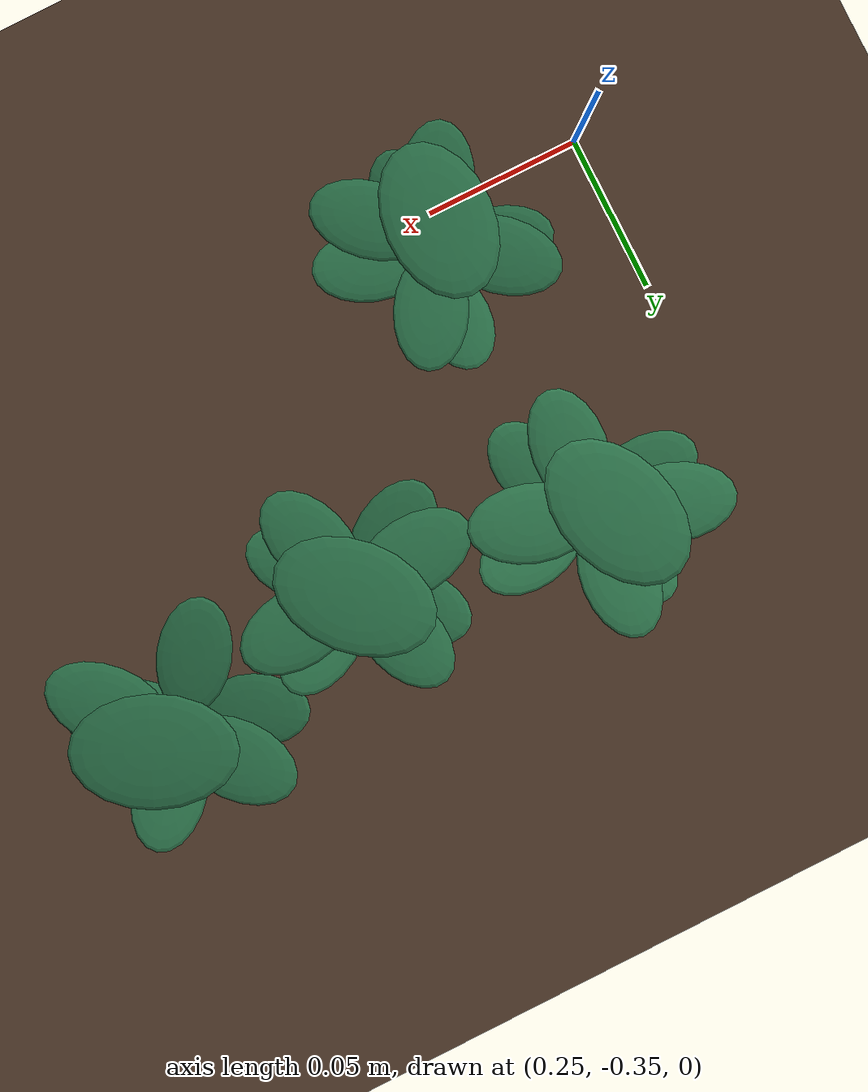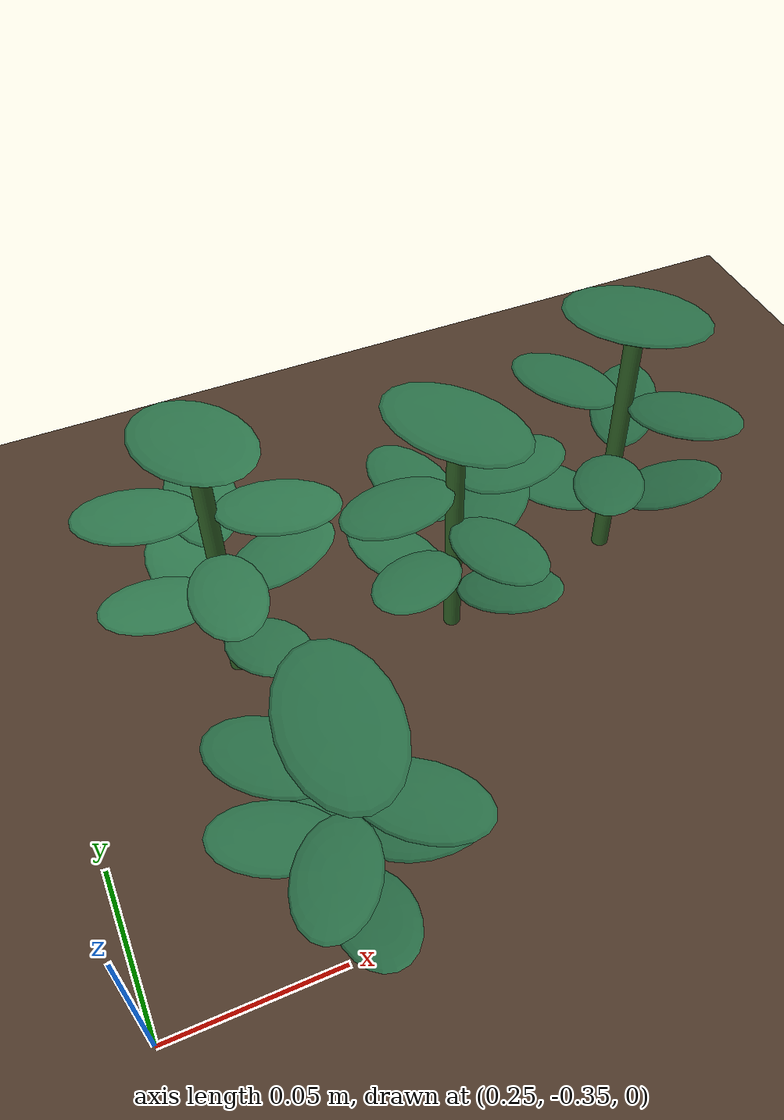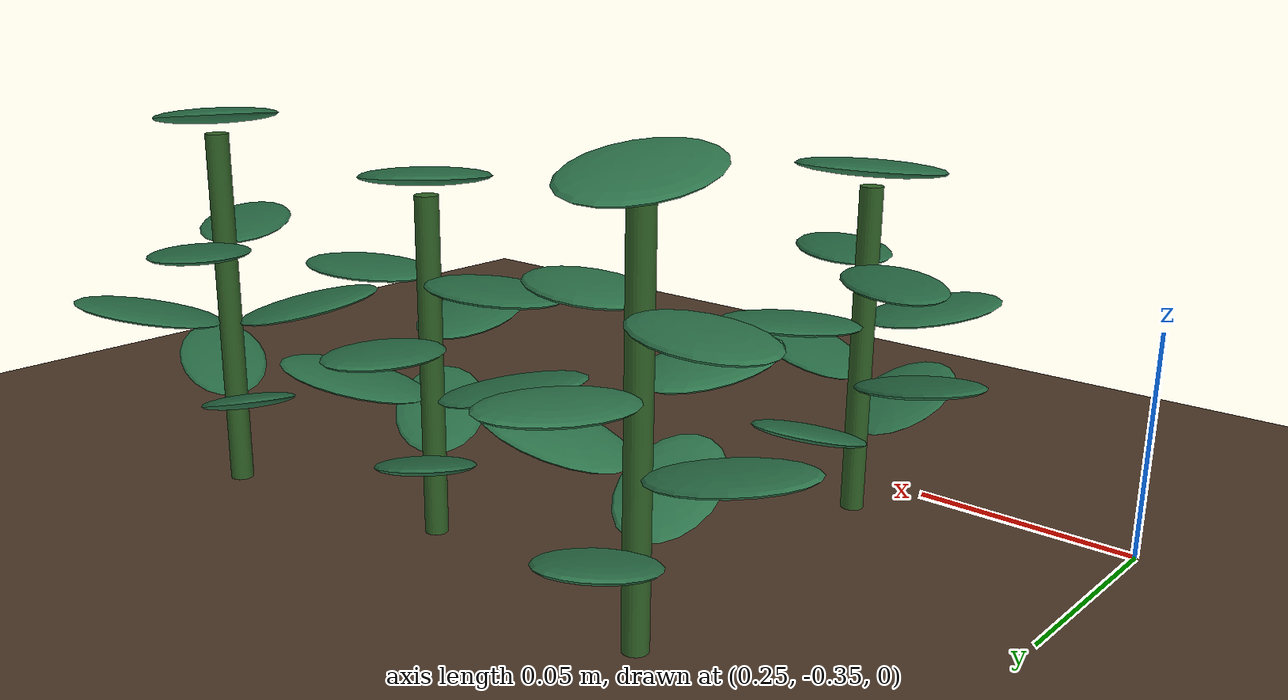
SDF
<sdf version="1.9">
 <world name="jim_field">
  <model name="ground_plane">
   <static>true</static>
   <link name="link">
    <collision name="collision">
     <geometry><plane><normal>0 0 1</normal><size>40 40</size></plane></geometry>
    </collision>
    <visual name="visual">
     <geometry><plane><normal>0 0 1</normal><size>40 40</size></plane></geometry>
     <material>
      <ambient>0.20 0.15 0.11 1</ambient>
      <diffuse>0.30 0.22 0.16 1</diffuse>
      <specular>0.01 0.01 0.01 1</specular>
     </material>
    </visual>
   </link>
  </model>
  <model name="field">
   <static>true</static>
   <pose>0.1837 -0.2516 0 0 0 0</pose>
   <model name="crop_78">
    <static>true</static>
    <pose>0.1254 -0.0813 0 0 0 0</pose>
    <link name="link">
     <visual name="stem">
      <pose>0 0 0.0378 0 0 0</pose>
      <geometry><cylinder><radius>0.0026</radius><length>0.0756</length></cylinder></geometry>
      <material>
       <ambient>0.10 0.22 0.09 1</ambient>
       <diffuse>0.20 0.40 0.16 1</diffuse>
       <specular>0.05 0.06 0.05 1</specular>
      </material>
     </visual>
     <visual name="leaflet_0_0">
      <pose>0.0012 0.0180 0.0227 0 -0.300 1.5025</pose>
      <geometry><ellipsoid><radii>0.0170 0.0105 0.0016</radii></ellipsoid></geometry>
      <material>
       <ambient>0.083 0.222 0.128 1</ambient>
       <diffuse>0.156 0.424 0.271 1</diffuse>
       <specular>0.05 0.06 0.05 1</specular>
      </material>
     </visual>
     <visual name="leaflet_0_1">
      <pose>-0.0012 -0.0180 0.0227 0 -0.300 4.6441</pose>
      <geometry><ellipsoid><radii>0.0170 0.0105 0.0016</radii></ellipsoid></geometry>
      <material>
       <ambient>0.083 0.222 0.128 1</ambient>
       <diffuse>0.156 0.424 0.271 1</diffuse>
       <specular>0.05 0.06 0.05 1</specular>
      </material>
     </visual>
     <visual name="leaflet_1_0">
      <pose>-0.0173 0.0051 0.0344 0 -0.200 2.8525</pose>
      <geometry><ellipsoid><radii>0.0170 0.0105 0.0016</radii></ellipsoid></geometry>
      <material>
       <ambient>0.083 0.222 0.128 1</ambient>
       <diffuse>0.156 0.424 0.271 1</diffuse>
       <specular>0.05 0.06 0.05 1</specular>
      </material>
     </visual>
     <visual name="leaflet_1_1">
      <pose>0.0173 -0.0051 0.0344 0 -0.200 5.9941</pose>
      <geometry><ellipsoid><radii>0.0170 0.0105 0.0016</radii></ellipsoid></geometry>
      <material>
       <ambient>0.083 0.222 0.128 1</ambient>
       <diffuse>0.156 0.424 0.271 1</diffuse>
       <specular>0.05 0.06 0.05 1</specular>
      </material>
     </visual>
     <visual name="leaflet_2_0">
      <pose>-0.0088 -0.0157 0.0461 0 -0.100 4.2025</pose>
      <geometry><ellipsoid><radii>0.0170 0.0105 0.0016</radii></ellipsoid></geometry>
      <material>
       <ambient>0.083 0.222 0.128 1</ambient>
       <diffuse>0.156 0.424 0.271 1</diffuse>
       <specular>0.05 0.06 0.05 1</specular>
      </material>
     </visual>
     <visual name="leaflet_2_1">
      <pose>0.0088 0.0157 0.0461 0 -0.100 7.3441</pose>
      <geometry><ellipsoid><radii>0.0170 0.0105 0.0016</radii></ellipsoid></geometry>
      <material>
       <ambient>0.083 0.222 0.128 1</ambient>
       <diffuse>0.156 0.424 0.271 1</diffuse>
       <specular>0.05 0.06 0.05 1</specular>
      </material>
     </visual>
     <visual name="leaflet_3_0">
      <pose>0.0134 -0.0120 0.0579 0 0.000 5.5525</pose>
      <geometry><ellipsoid><radii>0.0170 0.0105 0.0016</radii></ellipsoid></geometry>
      <material>
       <ambient>0.083 0.222 0.128 1</ambient>
       <diffuse>0.156 0.424 0.271 1</diffuse>
       <specular>0.05 0.06 0.05 1</specular>
      </material>
     </visual>
     <visual name="leaflet_3_1">
      <pose>-0.0134 0.0120 0.0579 0 0.000 8.6941</pose>
      <geometry><ellipsoid><radii>0.0170 0.0105 0.0016</radii></ellipsoid></geometry>
      <material>
       <ambient>0.083 0.222 0.128 1</ambient>
       <diffuse>0.156 0.424 0.271 1</diffuse>
       <specular>0.05 0.06 0.05 1</specular>
      </material>
     </visual>
     <visual name="leaflet_terminal">
      <pose>0 0 0.0796 0 -0.12 1.5025</pose>
      <geometry><ellipsoid><radii>0.0215 0.0140 0.0018</radii></ellipsoid></geometry>
      <material>
       <ambient>0.083 0.222 0.128 1</ambient>
       <diffuse>0.156 0.424 0.271 1</diffuse>
       <specular>0.05 0.06 0.05 1</specular>
      </material>
     </visual>
    </link>
   </model>
   <model name="crop_95">
    <static>true</static>
    <pose>0.1200 0.0038 0 0 0 0</pose>
    <link name="link">
     <visual name="stem">
      <pose>0 0 0.0428 0 0 0</pose>
      <geometry><cylinder><radius>0.0027</radius><length>0.0855</length></cylinder></geometry>
      <material>
       <ambient>0.10 0.22 0.09 1</ambient>
       <diffuse>0.20 0.40 0.16 1</diffuse>
       <specular>0.05 0.06 0.05 1</specular>
      </material>
     </visual>
     <visual name="leaflet_0_0">
      <pose>0.0063 -0.0175 0.0257 0 -0.300 5.0587</pose>
      <geometry><ellipsoid><radii>0.0170 0.0105 0.0016</radii></ellipsoid></geometry>
      <material>
       <ambient>0.094 0.240 0.142 1</ambient>
       <diffuse>0.178 0.460 0.296 1</diffuse>
       <specular>0.05 0.06 0.05 1</specular>
      </material>
     </visual>
     <visual name="leaflet_0_1">
      <pose>-0.0063 0.0175 0.0257 0 -0.300 8.2003</pose>
      <geometry><ellipsoid><radii>0.0170 0.0105 0.0016</radii></ellipsoid></geometry>
      <material>
       <ambient>0.094 0.240 0.142 1</ambient>
       <diffuse>0.178 0.460 0.296 1</diffuse>
       <specular>0.05 0.06 0.05 1</specular>
      </material>
     </visual>
     <visual name="leaflet_1_0">
      <pose>0.0184 0.0023 0.0389 0 -0.200 6.4087</pose>
      <geometry><ellipsoid><radii>0.0170 0.0105 0.0016</radii></ellipsoid></geometry>
      <material>
       <ambient>0.094 0.240 0.142 1</ambient>
       <diffuse>0.178 0.460 0.296 1</diffuse>
       <specular>0.05 0.06 0.05 1</specular>
      </material>
     </visual>
     <visual name="leaflet_1_1">
      <pose>-0.0184 -0.0023 0.0389 0 -0.200 9.5503</pose>
      <geometry><ellipsoid><radii>0.0170 0.0105 0.0016</radii></ellipsoid></geometry>
      <material>
       <ambient>0.094 0.240 0.142 1</ambient>
       <diffuse>0.178 0.460 0.296 1</diffuse>
       <specular>0.05 0.06 0.05 1</specular>
      </material>
     </visual>
     <visual name="leaflet_2_0">
      <pose>0.0018 0.0185 0.0522 0 -0.100 7.7587</pose>
      <geometry><ellipsoid><radii>0.0170 0.0105 0.0016</radii></ellipsoid></geometry>
      <material>
       <ambient>0.094 0.240 0.142 1</ambient>
       <diffuse>0.178 0.460 0.296 1</diffuse>
       <specular>0.05 0.06 0.05 1</specular>
      </material>
     </visual>
     <visual name="leaflet_2_1">
      <pose>-0.0018 -0.0185 0.0522 0 -0.100 10.9003</pose>
      <geometry><ellipsoid><radii>0.0170 0.0105 0.0016</radii></ellipsoid></geometry>
      <material>
       <ambient>0.094 0.240 0.142 1</ambient>
       <diffuse>0.178 0.460 0.296 1</diffuse>
       <specular>0.05 0.06 0.05 1</specular>
      </material>
     </visual>
     <visual name="leaflet_3_0">
      <pose>-0.0176 0.0058 0.0654 0 0.000 9.1087</pose>
      <geometry><ellipsoid><radii>0.0170 0.0105 0.0016</radii></ellipsoid></geometry>
      <material>
       <ambient>0.094 0.240 0.142 1</ambient>
       <diffuse>0.178 0.460 0.296 1</diffuse>
       <specular>0.05 0.06 0.05 1</specular>
      </material>
     </visual>
     <visual name="leaflet_3_1">
      <pose>0.0176 -0.0058 0.0654 0 0.000 12.2503</pose>
      <geometry><ellipsoid><radii>0.0170 0.0105 0.0016</radii></ellipsoid></geometry>
      <material>
       <ambient>0.094 0.240 0.142 1</ambient>
       <diffuse>0.178 0.460 0.296 1</diffuse>
       <specular>0.05 0.06 0.05 1</specular>
      </material>
     </visual>
     <visual name="leaflet_terminal">
      <pose>0 0 0.0895 0 -0.12 5.0587</pose>
      <geometry><ellipsoid><radii>0.0215 0.0140 0.0018</radii></ellipsoid></geometry>
      <material>
       <ambient>0.094 0.240 0.142 1</ambient>
       <diffuse>0.178 0.460 0.296 1</diffuse>
       <specular>0.05 0.06 0.05 1</specular>
      </material>
     </visual>
    </link>
   </model>
   <model name="crop_96">
    <static>true</static>
    <pose>0.1867 -0.0064 0 0 0 0</pose>
    <link name="link">
     <visual name="stem">
      <pose>0 0 0.0380 0 0 0</pose>
      <geometry><cylinder><radius>0.0026</radius><length>0.0760</length></cylinder></geometry>
      <material>
       <ambient>0.10 0.22 0.09 1</ambient>
       <diffuse>0.20 0.40 0.16 1</diffuse>
       <specular>0.05 0.06 0.05 1</specular>
      </material>
     </visual>
     <visual name="leaflet_0_0">
      <pose>-0.0124 0.0131 0.0228 0 -0.300 2.3272</pose>
      <geometry><ellipsoid><radii>0.0170 0.0105 0.0016</radii></ellipsoid></geometry>
      <material>
       <ambient>0.085 0.225 0.130 1</ambient>
       <diffuse>0.160 0.431 0.275 1</diffuse>
       <specular>0.05 0.06 0.05 1</specular>
      </material>
     </visual>
     <visual name="leaflet_0_1">
      <pose>0.0124 -0.0131 0.0228 0 -0.300 5.4688</pose>
      <geometry><ellipsoid><radii>0.0170 0.0105 0.0016</radii></ellipsoid></geometry>
      <material>
       <ambient>0.085 0.225 0.130 1</ambient>
       <diffuse>0.160 0.431 0.275 1</diffuse>
       <specular>0.05 0.06 0.05 1</specular>
      </material>
     </visual>
     <visual name="leaflet_1_0">
      <pose>-0.0155 -0.0092 0.0346 0 -0.200 3.6772</pose>
      <geometry><ellipsoid><radii>0.0170 0.0105 0.0016</radii></ellipsoid></geometry>
      <material>
       <ambient>0.085 0.225 0.130 1</ambient>
       <diffuse>0.160 0.431 0.275 1</diffuse>
       <specular>0.05 0.06 0.05 1</specular>
      </material>
     </visual>
     <visual name="leaflet_1_1">
      <pose>0.0155 0.0092 0.0346 0 -0.200 6.8188</pose>
      <geometry><ellipsoid><radii>0.0170 0.0105 0.0016</radii></ellipsoid></geometry>
      <material>
       <ambient>0.085 0.225 0.130 1</ambient>
       <diffuse>0.160 0.431 0.275 1</diffuse>
       <specular>0.05 0.06 0.05 1</specular>
      </material>
     </visual>
     <visual name="leaflet_2_0">
      <pose>0.0056 -0.0172 0.0463 0 -0.100 5.0272</pose>
      <geometry><ellipsoid><radii>0.0170 0.0105 0.0016</radii></ellipsoid></geometry>
      <material>
       <ambient>0.085 0.225 0.130 1</ambient>
       <diffuse>0.160 0.431 0.275 1</diffuse>
       <specular>0.05 0.06 0.05 1</specular>
      </material>
     </visual>
     <visual name="leaflet_2_1">
      <pose>-0.0056 0.0172 0.0463 0 -0.100 8.1688</pose>
      <geometry><ellipsoid><radii>0.0170 0.0105 0.0016</radii></ellipsoid></geometry>
      <material>
       <ambient>0.085 0.225 0.130 1</ambient>
       <diffuse>0.160 0.431 0.275 1</diffuse>
       <specular>0.05 0.06 0.05 1</specular>
      </material>
     </visual>
     <visual name="leaflet_3_0">
      <pose>0.0180 0.0017 0.0581 0 0.000 6.3772</pose>
      <geometry><ellipsoid><radii>0.0170 0.0105 0.0016</radii></ellipsoid></geometry>
      <material>
       <ambient>0.085 0.225 0.130 1</ambient>
       <diffuse>0.160 0.431 0.275 1</diffuse>
       <specular>0.05 0.06 0.05 1</specular>
      </material>
     </visual>
     <visual name="leaflet_3_1">
      <pose>-0.0180 -0.0017 0.0581 0 0.000 9.5188</pose>
      <geometry><ellipsoid><radii>0.0170 0.0105 0.0016</radii></ellipsoid></geometry>
      <material>
       <ambient>0.085 0.225 0.130 1</ambient>
       <diffuse>0.160 0.431 0.275 1</diffuse>
       <specular>0.05 0.06 0.05 1</specular>
      </material>
     </visual>
     <visual name="leaflet_terminal">
      <pose>0 0 0.0800 0 -0.12 2.3272</pose>
      <geometry><ellipsoid><radii>0.0215 0.0140 0.0018</radii></ellipsoid></geometry>
      <material>
       <ambient>0.085 0.225 0.130 1</ambient>
       <diffuse>0.160 0.431 0.275 1</diffuse>
       <specular>0.05 0.06 0.05 1</specular>
      </material>
     </visual>
    </link>
   </model>
   <model name="crop_97">
    <static>true</static>
    <pose>0.2464 0.0049 0 0 0 0</pose>
    <link name="link">
     <visual name="stem">
      <pose>0 0 0.0423 0 0 0</pose>
      <geometry><cylinder><radius>0.0027</radius><length>0.0847</length></cylinder></geometry>
      <material>
       <ambient>0.10 0.22 0.09 1</ambient>
       <diffuse>0.20 0.40 0.16 1</diffuse>
       <specular>0.05 0.06 0.05 1</specular>
      </material>
     </visual>
     <visual name="leaflet_0_0">
      <pose>-0.0169 0.0075 0.0254 0 -0.300 2.7225</pose>
      <geometry><ellipsoid><radii>0.0170 0.0105 0.0016</radii></ellipsoid></geometry>
      <material>
       <ambient>0.081 0.218 0.124 1</ambient>
       <diffuse>0.152 0.416 0.265 1</diffuse>
       <specular>0.05 0.06 0.05 1</specular>
      </material>
     </visual>
     <visual name="leaflet_0_1">
      <pose>0.0169 -0.0075 0.0254 0 -0.300 5.8641</pose>
      <geometry><ellipsoid><radii>0.0170 0.0105 0.0016</radii></ellipsoid></geometry>
      <material>
       <ambient>0.081 0.218 0.124 1</ambient>
       <diffuse>0.152 0.416 0.265 1</diffuse>
       <specular>0.05 0.06 0.05 1</specular>
      </material>
     </visual>
     <visual name="leaflet_1_0">
      <pose>-0.0111 -0.0149 0.0429 0 -0.200 4.0725</pose>
      <geometry><ellipsoid><radii>0.0170 0.0105 0.0016</radii></ellipsoid></geometry>
      <material>
       <ambient>0.081 0.218 0.124 1</ambient>
       <diffuse>0.152 0.416 0.265 1</diffuse>
       <specular>0.05 0.06 0.05 1</specular>
      </material>
     </visual>
     <visual name="leaflet_1_1">
      <pose>0.0111 0.0149 0.0429 0 -0.200 7.2141</pose>
      <geometry><ellipsoid><radii>0.0170 0.0105 0.0016</radii></ellipsoid></geometry>
      <material>
       <ambient>0.081 0.218 0.124 1</ambient>
       <diffuse>0.152 0.416 0.265 1</diffuse>
       <specular>0.05 0.06 0.05 1</specular>
      </material>
     </visual>
     <visual name="leaflet_2_0">
      <pose>0.0121 -0.0140 0.0604 0 -0.100 5.4225</pose>
      <geometry><ellipsoid><radii>0.0170 0.0105 0.0016</radii></ellipsoid></geometry>
      <material>
       <ambient>0.081 0.218 0.124 1</ambient>
       <diffuse>0.152 0.416 0.265 1</diffuse>
       <specular>0.05 0.06 0.05 1</specular>
      </material>
     </visual>
     <visual name="leaflet_2_1">
      <pose>-0.0121 0.0140 0.0604 0 -0.100 8.5641</pose>
      <geometry><ellipsoid><radii>0.0170 0.0105 0.0016</radii></ellipsoid></geometry>
      <material>
       <ambient>0.081 0.218 0.124 1</ambient>
       <diffuse>0.152 0.416 0.265 1</diffuse>
       <specular>0.05 0.06 0.05 1</specular>
      </material>
     </visual>
     <visual name="leaflet_terminal">
      <pose>0 0 0.0887 0 -0.12 2.7225</pose>
      <geometry><ellipsoid><radii>0.0215 0.0140 0.0018</radii></ellipsoid></geometry>
      <material>
       <ambient>0.081 0.218 0.124 1</ambient>
       <diffuse>0.152 0.416 0.265 1</diffuse>
       <specular>0.05 0.06 0.05 1</specular>
      </material>
     </visual>
    </link>
   </model>
  </model>
 </world>
</sdf>
